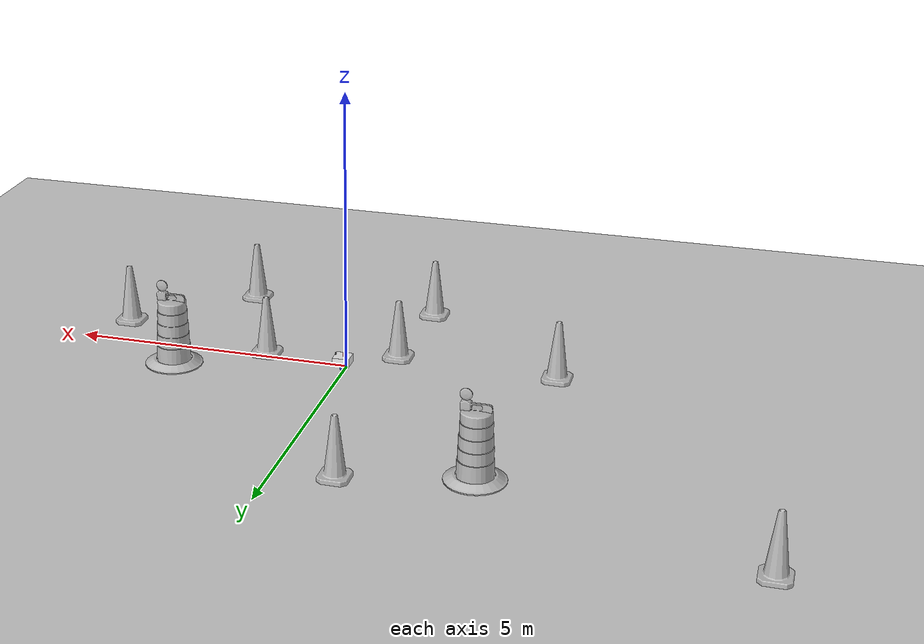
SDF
<sdf version="1.7">
 <world name="default">
  <light name="sun" type="directional">
   <pose>0 0 10 0 -0 0</pose>
   <diffuse>0.8 0.8 0.8 1</diffuse>
   <specular>0.2 0.2 0.2 1</specular>
   <attenuation>
    <range>1000</range>
    <constant>0.9</constant>
    <linear>0.01</linear>
    <quadratic>0.001</quadratic>
   </attenuation>
   <direction>-0.5 0.1 -0.9</direction>
   <spot><inner_angle>0</inner_angle><outer_angle>0</outer_angle><falloff>0</falloff></spot>
  </light>
  <model name="ground_plane">
   <static>1</static>
   <link name="link">
    <collision name="collision">
     <geometry><plane><normal>0 0 1</normal><size>100 100</size></plane></geometry>
     <surface>
      <contact><collide_bitmask>65535</collide_bitmask></contact>
      <friction><ode><mu>100</mu><mu2>50</mu2></ode></friction>
     </surface>
    </collision>
    <visual name="visual">
     <cast_shadows>0</cast_shadows>
     <geometry><plane><normal>0 0 1</normal><size>100 100</size></plane></geometry>
     <material>
      <script><uri>file://media/materials/scripts/gazebo.material</uri><name>Gazebo/Grey</name></script>
     </material>
    </visual>
   </link>
  </model>
  <gravity>0 0 -9.8</gravity>
  <magnetic_field>6e-06 2.3e-05 -4.2e-05</magnetic_field>
  <atmosphere type="adiabatic"/>
  <physics type="ode">
   <max_step_size>0.001</max_step_size>
   <real_time_factor>1</real_time_factor>
   <real_time_update_rate>1000</real_time_update_rate>
  </physics>
  <scene><ambient>0.4 0.4 0.4 1</ambient><background>0.7 0.7 0.7 1</background><shadows>1</shadows></scene>
  <audio><device>default</device></audio>
  <spherical_coordinates>
   <surface_model>EARTH_WGS84</surface_model>
   <latitude_deg>0</latitude_deg>
   <longitude_deg>0</longitude_deg>
   <elevation>0</elevation>
   <heading_deg>0</heading_deg>
  </spherical_coordinates>
  <model name="mybot_0">
   <link name="base_link">
    <inertial>
     <pose>0.055714 0 0.078571 0 -0 0</pose>
     <mass>0.7</mass>
     <inertia>
      <ixx>0.0064169</ixx>
      <ixy>0</ixy>
      <ixz>0.00118929</ixz>
      <iyy>0.00745405</iyy>
      <iyz>0</iyz>
      <izz>0.00876214</izz>
     </inertia>
    </inertial>
    <collision name="base_link_fixed_joint_lump__chassis_collision">
     <pose>0.05 0 0.075 0 -0 0</pose>
     <geometry><box><size>0.3 0.3 0.15</size></box></geometry>
    </collision>
    <collision name="base_link_fixed_joint_lump__caster_wheel_collision_1">
     <pose>0.14 0 0 0 -0 0</pose>
     <geometry><sphere><radius>0.05</radius></sphere></geometry>
     <surface><friction><ode><mu>0.001</mu><mu2>0.001</mu2></ode></friction></surface>
    </collision>
    <collision name="base_link_fixed_joint_lump__laser_frame_collision_2">
     <pose>0 0 0.175 0 -0 0</pose>
     <geometry><cylinder><length>0.04</length><radius>0.05</radius></cylinder></geometry>
    </collision>
    <visual name="base_link_fixed_joint_lump__chassis_visual">
     <pose>0.05 0 0.075 0 -0 0</pose>
     <geometry><box><size>0.3 0.3 0.15</size></box></geometry>
     <material>
      <script><name>Gazebo/White</name><uri>file://media/materials/scripts/gazebo.material</uri></script>
     </material>
    </visual>
    <visual name="base_link_fixed_joint_lump__camera_link_visual_1">
     <pose>0.176 0 0.181 0 0.18 0</pose>
     <geometry><box><size>0.01 0.03 0.03</size></box></geometry>
     <material>
      <script><name>Gazebo/Black</name><uri>file://media/materials/scripts/gazebo.material</uri></script>
     </material>
    </visual>
    <visual name="base_link_fixed_joint_lump__camera_link_visual_2">
     <pose>0.167049 0 0.131808 0 0.18 0</pose>
     <geometry><cylinder><length>0.1</length><radius>0.002</radius></cylinder></geometry>
     <material>
      <script><name>Gazebo/Black</name><uri>file://media/materials/scripts/gazebo.material</uri></script>
     </material>
    </visual>
    <visual name="base_link_fixed_joint_lump__caster_wheel_visual_3">
     <pose>0.14 0 0 0 -0 0</pose>
     <geometry><sphere><radius>0.05</radius></sphere></geometry>
     <material>
      <script><name>Gazebo/Black</name><uri>file://media/materials/scripts/gazebo.material</uri></script>
     </material>
    </visual>
    <visual name="base_link_fixed_joint_lump__laser_frame_visual_4">
     <pose>0 0 0.175 0 -0 0</pose>
     <geometry><cylinder><length>0.04</length><radius>0.05</radius></cylinder></geometry>
     <material>
      <script><name>Gazebo/Red</name><uri>file://media/materials/scripts/gazebo.material</uri></script>
     </material>
    </visual>
    <sensor name="camera" type="camera">
     <visualize>1</visualize>
     <update_rate>10</update_rate>
     <camera>
      <horizontal_fov>1.089</horizontal_fov>
      <image><format>R8G8B8</format><width>640</width><height>480</height></image>
      <clip><near>0.05</near><far>8</far></clip>
     </camera>
     <plugin name="camera_controller" filename="libgazebo_ros_camera.so">
      <frame_name>camera_link_optical</frame_name>
     </plugin>
     <pose>0.176 0 0.181 0 0.18 0</pose>
    </sensor>
    <sensor name="laser" type="ray">
     <visualize>0</visualize>
     <update_rate>10</update_rate>
     <ray>
      <scan>
       <horizontal>
        <samples>360</samples>
        <min_angle>-3.14</min_angle>
        <max_angle>3.14</max_angle>
        <resolution>1</resolution>
       </horizontal>
       <vertical><samples>1</samples><min_angle>0</min_angle><max_angle>0</max_angle></vertical>
      </scan>
      <range><min>0.3</min><max>12</max></range>
     </ray>
     <plugin name="laser_controller" filename="libgazebo_ros_ray_sensor.so">
      <ros><argument>~/out:=scan</argument></ros>
      <output_type>sensor_msgs/LaserScan</output_type>
      <frame_name>laser_frame</frame_name>
     </plugin>
     <pose>0 0 0.175 0 -0 0</pose>
    </sensor>
   </link>
   <joint name="left_wheel_joint" type="revolute">
    <pose relative_to="base_link">0 0.175 0 -1.5708 0 0</pose>
    <parent>base_link</parent>
    <child>left_wheel</child>
    <axis>
     <xyz>0 0 1</xyz>
     <limit><lower>-1e+16</lower><upper>1e+16</upper></limit>
     <dynamics><spring_reference>0</spring_reference><spring_stiffness>0</spring_stiffness></dynamics>
    </axis>
   </joint>
   <link name="left_wheel">
    <pose relative_to="left_wheel_joint">0 0 0 0 -0 0</pose>
    <inertial>
     <mass>0.1</mass>
     <inertia>
      <ixx>7.58333e-05</ixx>
      <ixy>0</ixy>
      <ixz>0</ixz>
      <iyy>7.58333e-05</iyy>
      <iyz>0</iyz>
      <izz>0.000125</izz>
     </inertia>
    </inertial>
    <collision name="left_wheel_collision">
     <geometry><cylinder><length>0.04</length><radius>0.05</radius></cylinder></geometry>
    </collision>
    <visual name="left_wheel_visual">
     <geometry><cylinder><length>0.04</length><radius>0.05</radius></cylinder></geometry>
     <material>
      <script><name>Gazebo/Blue</name><uri>file://media/materials/scripts/gazebo.material</uri></script>
     </material>
    </visual>
   </link>
   <joint name="right_wheel_joint" type="revolute">
    <pose relative_to="base_link">0 -0.175 0 1.5708 -0 0</pose>
    <parent>base_link</parent>
    <child>right_wheel</child>
    <axis>
     <xyz>0 0 -1</xyz>
     <limit><lower>-1e+16</lower><upper>1e+16</upper></limit>
     <dynamics><spring_reference>0</spring_reference><spring_stiffness>0</spring_stiffness></dynamics>
    </axis>
   </joint>
   <link name="right_wheel">
    <pose relative_to="right_wheel_joint">0 0 0 0 -0 0</pose>
    <inertial>
     <mass>0.1</mass>
     <inertia>
      <ixx>7.58333e-05</ixx>
      <ixy>0</ixy>
      <ixz>0</ixz>
      <iyy>7.58333e-05</iyy>
      <iyz>0</iyz>
      <izz>0.000125</izz>
     </inertia>
    </inertial>
    <collision name="right_wheel_collision">
     <geometry><cylinder><length>0.04</length><radius>0.05</radius></cylinder></geometry>
    </collision>
    <visual name="right_wheel_visual">
     <geometry><cylinder><length>0.04</length><radius>0.05</radius></cylinder></geometry>
     <material>
      <script><name>Gazebo/Blue</name><uri>file://media/materials/scripts/gazebo.material</uri></script>
     </material>
    </visual>
   </link>
   <static>0</static>
   <plugin name="diff_drive" filename="libgazebo_ros_diff_drive.so">
    <left_joint>left_wheel_joint</left_joint>
    <right_joint>right_wheel_joint</right_joint>
    <wheel_separation>0.35</wheel_separation>
    <wheel_diameter>0.1</wheel_diameter>
    <max_wheel_torque>200</max_wheel_torque>
    <max_wheel_acceleration>10.0</max_wheel_acceleration>
    <odometry_frame>odom</odometry_frame>
    <robot_base_frame>base_link</robot_base_frame>
    <publish_odom>1</publish_odom>
    <publish_odom_tf>1</publish_odom_tf>
    <publish_wheel_tf>1</publish_wheel_tf>
   </plugin>
   <pose>0.013463 8.6e-05 0.05 0 1.2e-05 0.000361</pose>
  </model>
  <model name="Construction Barrel">
   <link name="link">
    <inertial>
     <pose>0 0 0.4 0 -0 0</pose>
     <mass>500</mass>
     <inertia><ixx>51.2096</ixx><iyy>51.2096</iyy><izz>25</izz><ixy>0</ixy><ixz>0</ixz><iyz>0</iyz></inertia>
    </inertial>
    <collision name="collision">
     <geometry><mesh><uri>model://construction_barrel/meshes/construction_barrel.dae</uri></mesh></geometry>
    </collision>
    <visual name="visual">
     <geometry><mesh><uri>model://construction_barrel/meshes/construction_barrel.dae</uri></mesh></geometry>
    </visual>
   </link>
   <pose>-3.1138 3.45545 -2e-06 8e-06 -4e-06 -1.7e-05</pose>
  </model>
  <model name="Construction Cone">
   <link name="link">
    <collision name="collision">
     <geometry>
      <mesh><scale>10 10 10</scale><uri>model://construction_cone/meshes/construction_cone.dae</uri></mesh>
     </geometry>
    </collision>
    <visual name="visual">
     <geometry>
      <mesh><scale>10 10 10</scale><uri>model://construction_cone/meshes/construction_cone.dae</uri></mesh>
     </geometry>
    </visual>
    <inertial>
     <inertia><ixx>1</ixx><ixy>0</ixy><ixz>0</ixz><iyy>1</iyy><iyz>0</iyz><izz>1</izz></inertia>
     <mass>1</mass>
    </inertial>
   </link>
   <pose>-0.789916 -0.606666 -0 0 -0 0</pose>
  </model>
  <model name="Construction Cone_0">
   <link name="link">
    <collision name="collision">
     <geometry>
      <mesh><scale>10 10 10</scale><uri>model://construction_cone/meshes/construction_cone.dae</uri></mesh>
     </geometry>
    </collision>
    <visual name="visual">
     <geometry>
      <mesh><scale>10 10 10</scale><uri>model://construction_cone/meshes/construction_cone.dae</uri></mesh>
     </geometry>
    </visual>
    <inertial>
     <inertia><ixx>1</ixx><ixy>0</ixy><ixz>0</ixz><iyy>1</iyy><iyz>0</iyz><izz>1</izz></inertia>
     <mass>1</mass>
    </inertial>
   </link>
   <pose>-3.67068 -0.480294 -0 0 -0 0</pose>
  </model>
  <model name="Construction Cone_1">
   <link name="link">
    <collision name="collision">
     <geometry>
      <mesh><scale>10 10 10</scale><uri>model://construction_cone/meshes/construction_cone.dae</uri></mesh>
     </geometry>
    </collision>
    <visual name="visual">
     <geometry>
      <mesh><scale>10 10 10</scale><uri>model://construction_cone/meshes/construction_cone.dae</uri></mesh>
     </geometry>
    </visual>
    <inertial>
     <inertia><ixx>1</ixx><ixy>0</ixy><ixz>0</ixz><iyy>1</iyy><iyz>0</iyz><izz>1</izz></inertia>
     <mass>1</mass>
    </inertial>
   </link>
   <pose>-1.01055 4.00276 0 -0 -0 -0</pose>
  </model>
  <model name="Construction Cone_2">
   <link name="link">
    <collision name="collision">
     <geometry>
      <mesh><scale>10 10 10</scale><uri>model://construction_cone/meshes/construction_cone.dae</uri></mesh>
     </geometry>
    </collision>
    <visual name="visual">
     <geometry>
      <mesh><scale>10 10 10</scale><uri>model://construction_cone/meshes/construction_cone.dae</uri></mesh>
     </geometry>
    </visual>
    <inertial>
     <inertia><ixx>1</ixx><ixy>0</ixy><ixz>0</ixz><iyy>1</iyy><iyz>0</iyz><izz>1</izz></inertia>
     <mass>1</mass>
    </inertial>
   </link>
   <pose>1.52303 -0.139896 -3e-06 -3e-06 -1e-06 -0</pose>
  </model>
  <model name="Construction Cone_3">
   <link name="link">
    <collision name="collision">
     <geometry>
      <mesh><scale>10 10 10</scale><uri>model://construction_cone/meshes/construction_cone.dae</uri></mesh>
     </geometry>
    </collision>
    <visual name="visual">
     <geometry>
      <mesh><scale>10 10 10</scale><uri>model://construction_cone/meshes/construction_cone.dae</uri></mesh>
     </geometry>
    </visual>
    <inertial>
     <inertia><ixx>1</ixx><ixy>0</ixy><ixz>0</ixz><iyy>1</iyy><iyz>0</iyz><izz>1</izz></inertia>
     <mass>1</mass>
    </inertial>
   </link>
   <pose>2.53615 -2.56205 -0 0 -0 0</pose>
  </model>
  <model name="Construction Cone_4">
   <link name="link">
    <collision name="collision">
     <geometry>
      <mesh><scale>10 10 10</scale><uri>model://construction_cone/meshes/construction_cone.dae</uri></mesh>
     </geometry>
    </collision>
    <visual name="visual">
     <geometry>
      <mesh><scale>10 10 10</scale><uri>model://construction_cone/meshes/construction_cone.dae</uri></mesh>
     </geometry>
    </visual>
    <inertial>
     <inertia><ixx>1</ixx><ixy>0</ixy><ixz>0</ixz><iyy>1</iyy><iyz>0</iyz><izz>1</izz></inertia>
     <mass>1</mass>
    </inertial>
   </link>
   <pose>-0.948185 -2.63757 -0 0 -0 0</pose>
  </model>
  <model name="Construction Barrel_0">
   <link name="link">
    <inertial>
     <pose>0 0 0.4 0 -0 0</pose>
     <mass>500</mass>
     <inertia><ixx>51.2096</ixx><iyy>51.2096</iyy><izz>25</izz><ixy>0</ixy><ixz>0</ixz><iyz>0</iyz></inertia>
    </inertial>
    <collision name="collision">
     <geometry><mesh><uri>model://construction_barrel/meshes/construction_barrel.dae</uri></mesh></geometry>
    </collision>
    <visual name="visual">
     <geometry><mesh><uri>model://construction_barrel/meshes/construction_barrel.dae</uri></mesh></geometry>
    </visual>
   </link>
   <pose>2.97559 0.680995 1e-06 2e-06 3e-06 -6e-06</pose>
  </model>
  <model name="Construction Cone_5">
   <link name="link">
    <collision name="collision">
     <geometry>
      <mesh><scale>10 10 10</scale><uri>model://construction_cone/meshes/construction_cone.dae</uri></mesh>
     </geometry>
    </collision>
    <visual name="visual">
     <geometry>
      <mesh><scale>10 10 10</scale><uri>model://construction_cone/meshes/construction_cone.dae</uri></mesh>
     </geometry>
    </visual>
    <inertial>
     <inertia><ixx>1</ixx><ixy>0</ixy><ixz>0</ixz><iyy>1</iyy><iyz>0</iyz><izz>1</izz></inertia>
     <mass>1</mass>
    </inertial>
   </link>
   <pose>-7.79591 5.1045 -0 0 -0 0</pose>
  </model>
  <model name="Construction Cone_6">
   <link name="link">
    <collision name="collision">
     <geometry>
      <mesh><scale>10 10 10</scale><uri>model://construction_cone/meshes/construction_cone.dae</uri></mesh>
     </geometry>
    </collision>
    <visual name="visual">
     <geometry>
      <mesh><scale>10 10 10</scale><uri>model://construction_cone/meshes/construction_cone.dae</uri></mesh>
     </geometry>
    </visual>
    <inertial>
     <inertia><ixx>1</ixx><ixy>0</ixy><ixz>0</ixz><iyy>1</iyy><iyz>0</iyz><izz>1</izz></inertia>
     <mass>1</mass>
    </inertial>
   </link>
   <pose>4.42877 -0.844941 -0 0 -1e-06 0</pose>
  </model>
 </world>
</sdf>
